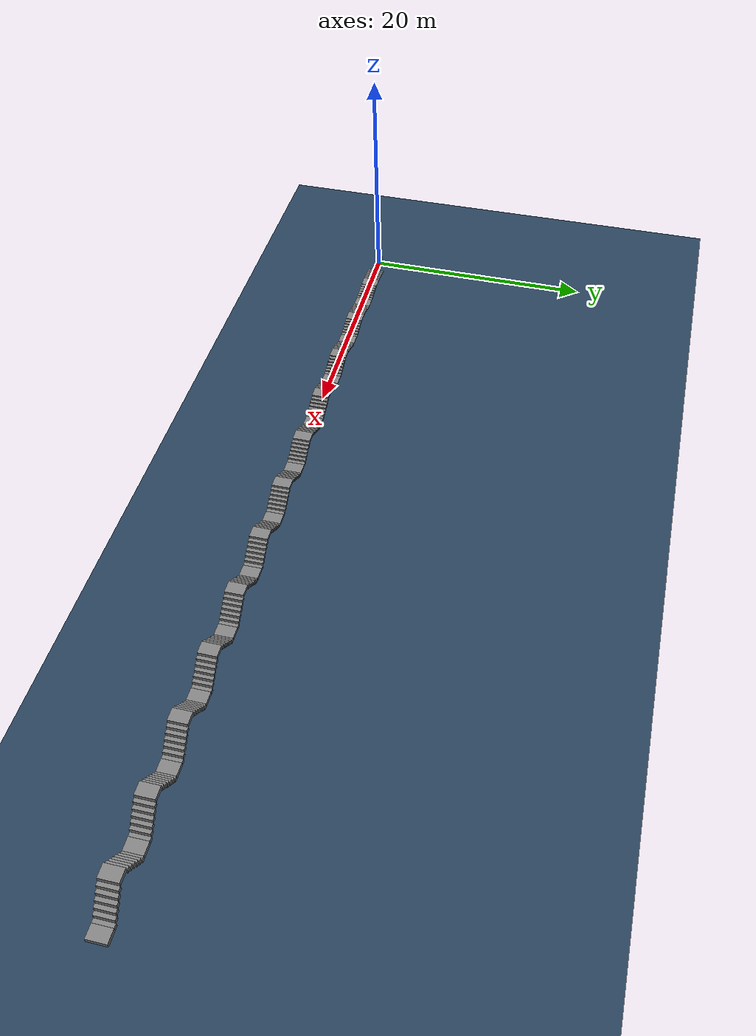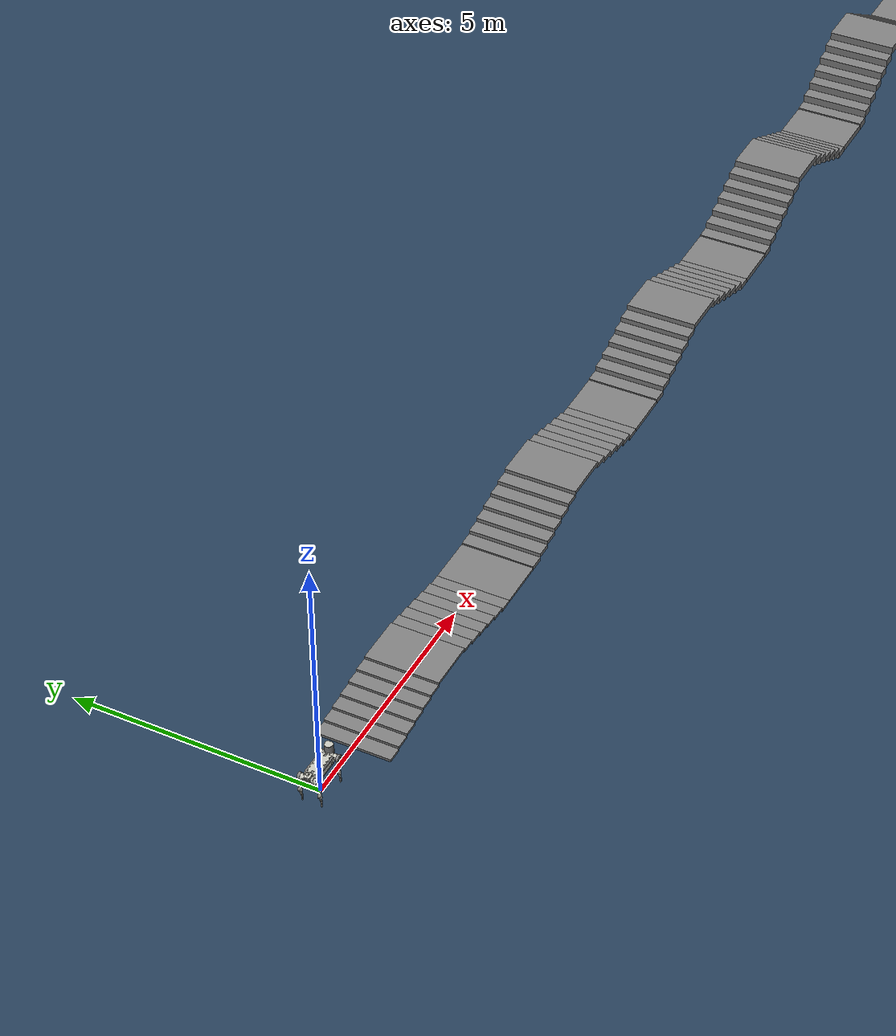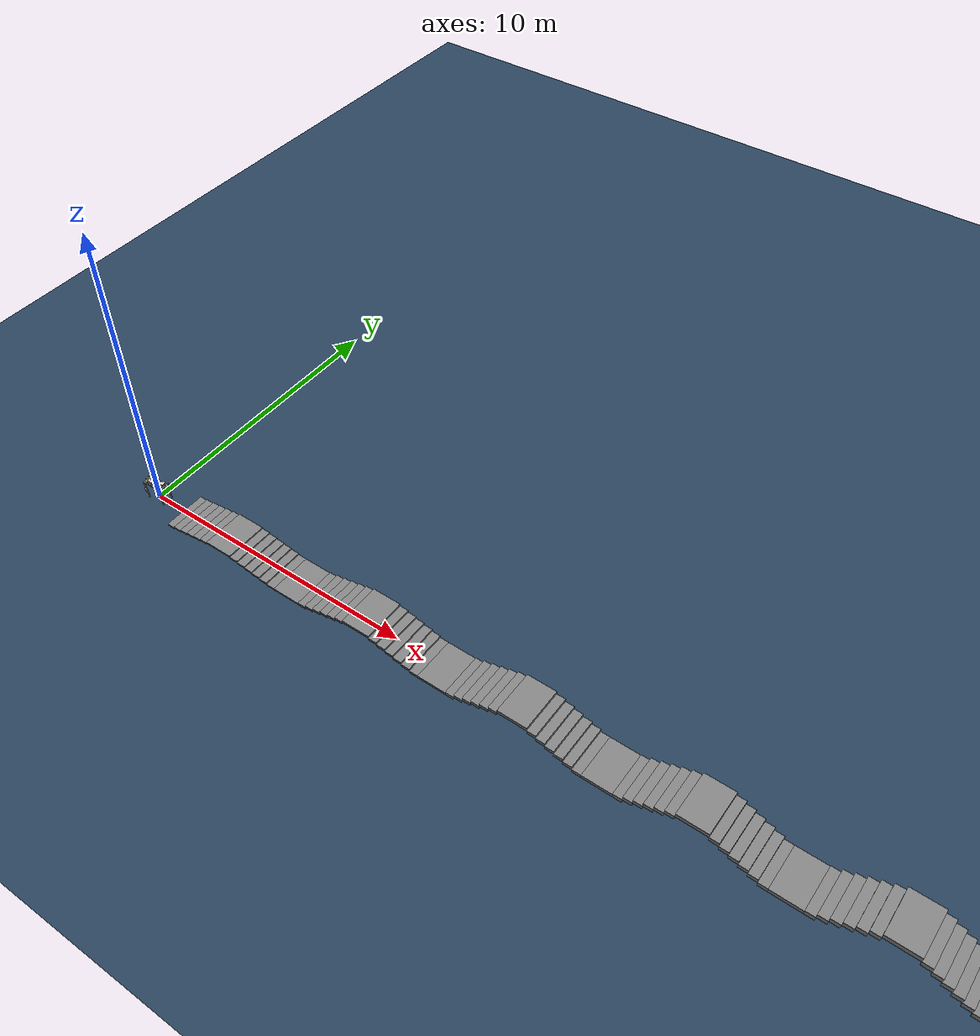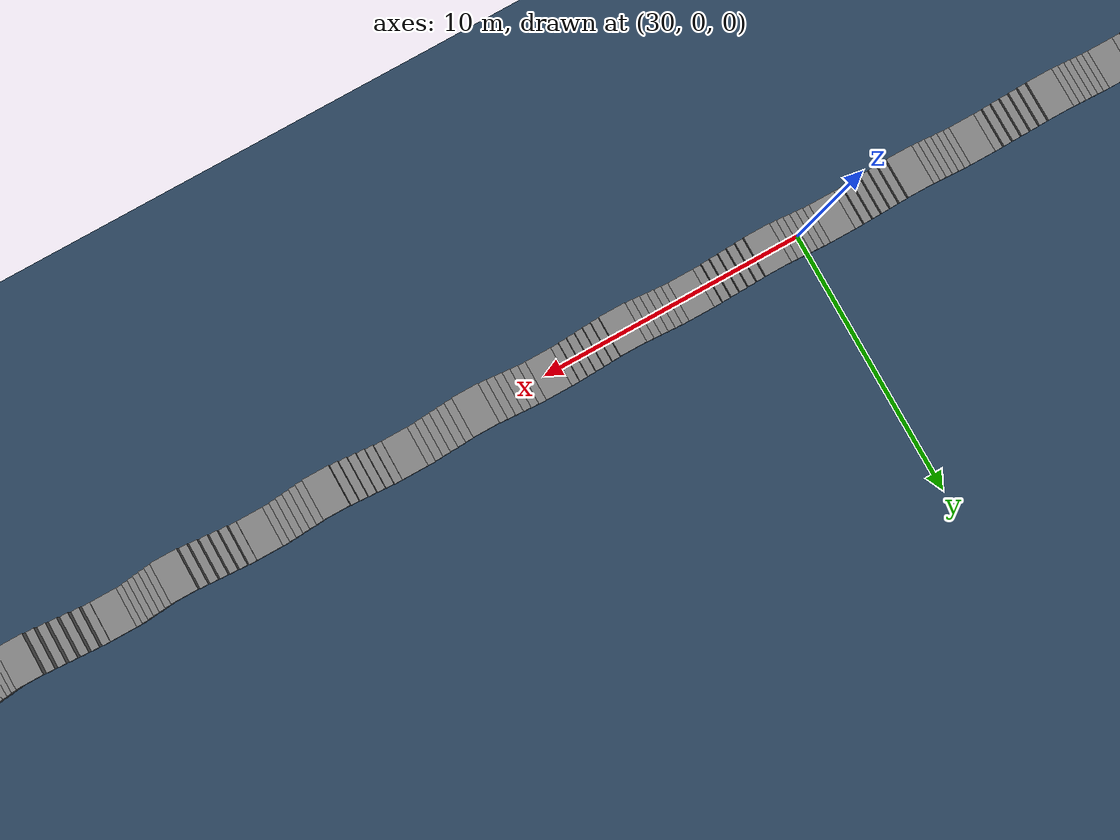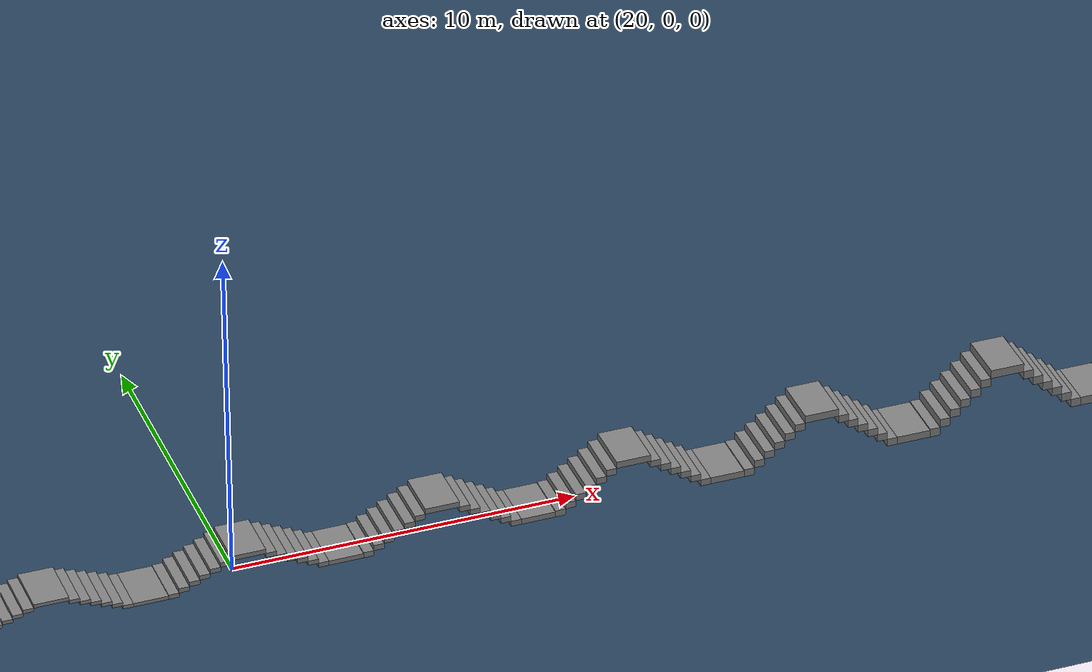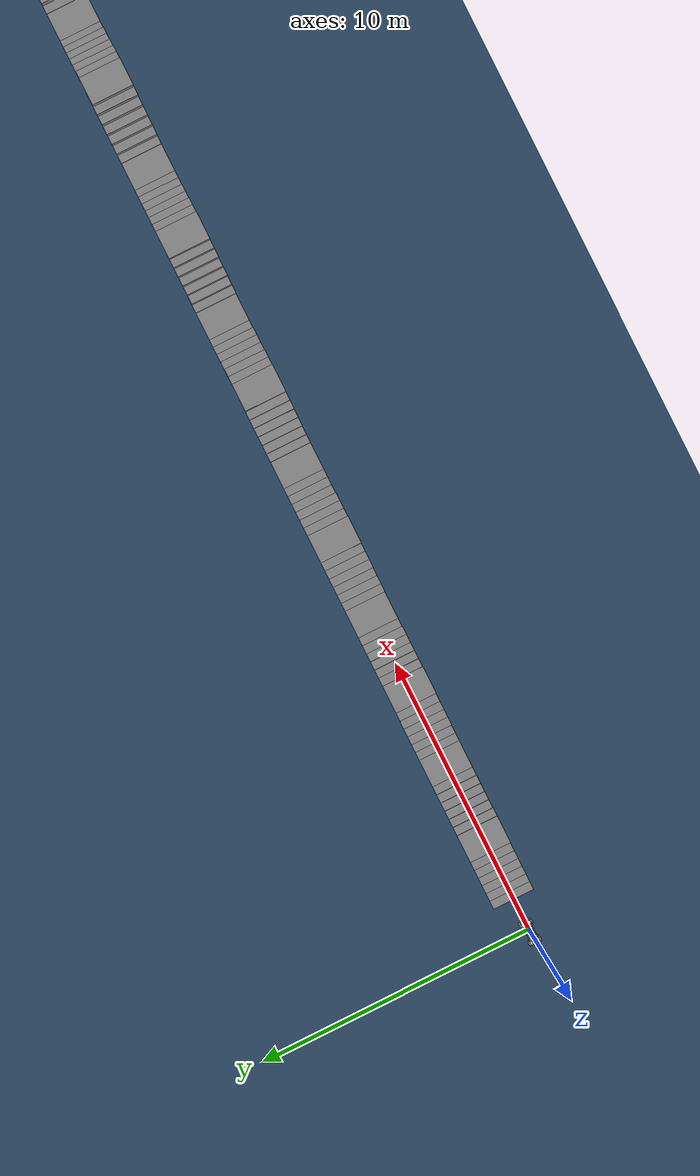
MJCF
<mujoco model="b2 scene">
  <include file="b2.xml" />
  <!--Stairs series: Up 6, Down 6, Start height 0.050, Step inc 0.030, Max height 0.400. -->
  <statistic center="0 0 0.1" extent="0.8" />
  <visual>
    <headlight diffuse="0.6 0.6 0.6" ambient="0.3 0.3 0.3" specular="0 0 0" />
    <rgba haze="0.15 0.25 0.35 1" />
    <global azimuth="-130" elevation="-20" />
  </visual>
  <asset>
    <texture type="skybox" builtin="gradient" rgb1="0.3 0.5 0.7" rgb2="0 0 0" width="512" height="3072" />
    <texture type="2d" name="groundplane" builtin="checker" mark="edge" rgb1="0.2 0.3 0.4" rgb2="0.1 0.2 0.3" markrgb="0.8 0.8 0.8" width="300" height="300" />
    <material name="groundplane" texture="groundplane" texuniform="true" texrepeat="5 5" reflectance="0.0" />
  </asset>
  <worldbody>
    <light pos="0 0 1.5" dir="0 0 -1" directional="true" />
    <geom name="floor" size="0 0 0.05" type="plane" material="groundplane" />
    <geom pos="1.3 0.0 0.025" type="box" size="0.15 0.75 0.025" quat="1.0 0.0 0.0 0.0" />
    <geom pos="1.6 0.0 0.07500000000000001" type="box" size="0.15 0.75 0.025" quat="1.0 0.0 0.0 0.0" />
    <geom pos="1.9 0.0 0.125" type="box" size="0.15 0.75 0.025" quat="1.0 0.0 0.0 0.0" />
    <geom pos="2.2 0.0 0.17500000000000002" type="box" size="0.15 0.75 0.025" quat="1.0 0.0 0.0 0.0" />
    <geom pos="2.5 0.0 0.225" type="box" size="0.15 0.75 0.025" quat="1.0 0.0 0.0 0.0" />
    <geom pos="2.8 0.0 0.275" type="box" size="0.15 0.75 0.025" quat="1.0 0.0 0.0 0.0" />
    <geom pos="3.4499999999999997 0.0 0.32500000000000007" type="box" size="0.5 0.75 0.025" quat="1.0 0.0 0.0 0.0" />
    <geom pos="4.1 0.0 0.275" type="box" size="0.15 0.75 0.025" quat="1.0 0.0 0.0 0.0" />
    <geom pos="4.3999999999999995 0.0 0.22500000000000003" type="box" size="0.15 0.75 0.025" quat="1.0 0.0 0.0 0.0" />
    <geom pos="4.699999999999999 0.0 0.17500000000000002" type="box" size="0.15 0.75 0.025" quat="1.0 0.0 0.0 0.0" />
    <geom pos="5.0 0.0 0.125" type="box" size="0.15 0.75 0.025" quat="1.0 0.0 0.0 0.0" />
    <geom pos="5.3 0.0 0.07500000000000001" type="box" size="0.15 0.75 0.025" quat="1.0 0.0 0.0 0.0" />
    <geom pos="5.6 0.0 0.025000000000000022" type="box" size="0.15 0.75 0.025" quat="1.0 0.0 0.0 0.0" />
    <geom pos="6.25 0.0 0.025" type="box" size="0.5 0.75 0.025" quat="1.0 0.0 0.0 0.0" />
    <geom pos="6.898999999999999 0.0 0.04" type="box" size="0.15 0.75 0.04" quat="1.0 0.0 0.0 0.0" />
    <geom pos="7.198999999999999 0.0 0.12" type="box" size="0.15 0.75 0.04" quat="1.0 0.0 0.0 0.0" />
    <geom pos="7.498999999999999 0.0 0.2" type="box" size="0.15 0.75 0.04" quat="1.0 0.0 0.0 0.0" />
    <geom pos="7.7989999999999995 0.0 0.28" type="box" size="0.15 0.75 0.04" quat="1.0 0.0 0.0 0.0" />
    <geom pos="8.099 0.0 0.36" type="box" size="0.15 0.75 0.04" quat="1.0 0.0 0.0 0.0" />
    <geom pos="8.399 0.0 0.44" type="box" size="0.15 0.75 0.04" quat="1.0 0.0 0.0 0.0" />
    <geom pos="9.049 0.0 0.52" type="box" size="0.5 0.75 0.04" quat="1.0 0.0 0.0 0.0" />
    <geom pos="9.698999999999998 0.0 0.44" type="box" size="0.15 0.75 0.04" quat="1.0 0.0 0.0 0.0" />
    <geom pos="9.998999999999999 0.0 0.36" type="box" size="0.15 0.75 0.04" quat="1.0 0.0 0.0 0.0" />
    <geom pos="10.299 0.0 0.28" type="box" size="0.15 0.75 0.04" quat="1.0 0.0 0.0 0.0" />
    <geom pos="10.598999999999998 0.0 0.2" type="box" size="0.15 0.75 0.04" quat="1.0 0.0 0.0 0.0" />
    <geom pos="10.899 0.0 0.12" type="box" size="0.15 0.75 0.04" quat="1.0 0.0 0.0 0.0" />
    <geom pos="11.198999999999998 0.0 0.03999999999999998" type="box" size="0.15 0.75 0.04" quat="1.0 0.0 0.0 0.0" />
    <geom pos="11.849 0.0 0.04" type="box" size="0.5 0.75 0.04" quat="1.0 0.0 0.0 0.0" />
    <geom pos="12.498 0.0 0.055" type="box" size="0.15 0.75 0.055" quat="1.0 0.0 0.0 0.0" />
    <geom pos="12.797999999999998 0.0 0.165" type="box" size="0.15 0.75 0.055" quat="1.0 0.0 0.0 0.0" />
    <geom pos="13.097999999999999 0.0 0.275" type="box" size="0.15 0.75 0.055" quat="1.0 0.0 0.0 0.0" />
    <geom pos="13.397999999999998 0.0 0.385" type="box" size="0.15 0.75 0.055" quat="1.0 0.0 0.0 0.0" />
    <geom pos="13.697999999999999 0.0 0.495" type="box" size="0.15 0.75 0.055" quat="1.0 0.0 0.0 0.0" />
    <geom pos="13.997999999999998 0.0 0.605" type="box" size="0.15 0.75 0.055" quat="1.0 0.0 0.0 0.0" />
    <geom pos="14.647999999999998 0.0 0.7150000000000001" type="box" size="0.5 0.75 0.055" quat="1.0 0.0 0.0 0.0" />
    <geom pos="15.297999999999998 0.0 0.605" type="box" size="0.15 0.75 0.055" quat="1.0 0.0 0.0 0.0" />
    <geom pos="15.597999999999999 0.0 0.495" type="box" size="0.15 0.75 0.055" quat="1.0 0.0 0.0 0.0" />
    <geom pos="15.897999999999998 0.0 0.385" type="box" size="0.15 0.75 0.055" quat="1.0 0.0 0.0 0.0" />
    <geom pos="16.197999999999997 0.0 0.27499999999999997" type="box" size="0.15 0.75 0.055" quat="1.0 0.0 0.0 0.0" />
    <geom pos="16.497999999999998 0.0 0.16499999999999998" type="box" size="0.15 0.75 0.055" quat="1.0 0.0 0.0 0.0" />
    <geom pos="16.798 0.0 0.05499999999999994" type="box" size="0.15 0.75 0.055" quat="1.0 0.0 0.0 0.0" />
    <geom pos="17.448 0.0 0.055" type="box" size="0.5 0.75 0.055" quat="1.0 0.0 0.0 0.0" />
    <geom pos="18.096999999999998 0.0 0.07" type="box" size="0.15 0.75 0.07" quat="1.0 0.0 0.0 0.0" />
    <geom pos="18.397 0.0 0.21000000000000002" type="box" size="0.15 0.75 0.07" quat="1.0 0.0 0.0 0.0" />
    <geom pos="18.696999999999996 0.0 0.35000000000000003" type="box" size="0.15 0.75 0.07" quat="1.0 0.0 0.0 0.0" />
    <geom pos="18.996999999999996 0.0 0.49000000000000005" type="box" size="0.15 0.75 0.07" quat="1.0 0.0 0.0 0.0" />
    <geom pos="19.296999999999997 0.0 0.6300000000000001" type="box" size="0.15 0.75 0.07" quat="1.0 0.0 0.0 0.0" />
    <geom pos="19.596999999999998 0.0 0.77" type="box" size="0.15 0.75 0.07" quat="1.0 0.0 0.0 0.0" />
    <geom pos="20.246999999999996 0.0 0.9100000000000001" type="box" size="0.5 0.75 0.07" quat="1.0 0.0 0.0 0.0" />
    <geom pos="20.897 0.0 0.77" type="box" size="0.15 0.75 0.07" quat="1.0 0.0 0.0 0.0" />
    <geom pos="21.196999999999996 0.0 0.63" type="box" size="0.15 0.75 0.07" quat="1.0 0.0 0.0 0.0" />
    <geom pos="21.496999999999996 0.0 0.49" type="box" size="0.15 0.75 0.07" quat="1.0 0.0 0.0 0.0" />
    <geom pos="21.796999999999997 0.0 0.35" type="box" size="0.15 0.75 0.07" quat="1.0 0.0 0.0 0.0" />
    <geom pos="22.096999999999998 0.0 0.20999999999999996" type="box" size="0.15 0.75 0.07" quat="1.0 0.0 0.0 0.0" />
    <geom pos="22.397 0.0 0.06999999999999995" type="box" size="0.15 0.75 0.07" quat="1.0 0.0 0.0 0.0" />
    <geom pos="23.046999999999997 0.0 0.07" type="box" size="0.5 0.75 0.07" quat="1.0 0.0 0.0 0.0" />
    <geom pos="23.695999999999998 0.0 0.085" type="box" size="0.15 0.75 0.085" quat="1.0 0.0 0.0 0.0" />
    <geom pos="23.996 0.0 0.255" type="box" size="0.15 0.75 0.085" quat="1.0 0.0 0.0 0.0" />
    <geom pos="24.295999999999996 0.0 0.42500000000000004" type="box" size="0.15 0.75 0.085" quat="1.0 0.0 0.0 0.0" />
    <geom pos="24.595999999999997 0.0 0.5950000000000001" type="box" size="0.15 0.75 0.085" quat="1.0 0.0 0.0 0.0" />
    <geom pos="24.895999999999997 0.0 0.765" type="box" size="0.15 0.75 0.085" quat="1.0 0.0 0.0 0.0" />
    <geom pos="25.195999999999998 0.0 0.935" type="box" size="0.15 0.75 0.085" quat="1.0 0.0 0.0 0.0" />
    <geom pos="25.845999999999997 0.0 1.105" type="box" size="0.5 0.75 0.085" quat="1.0 0.0 0.0 0.0" />
    <geom pos="26.495999999999995 0.0 0.935" type="box" size="0.15 0.75 0.085" quat="1.0 0.0 0.0 0.0" />
    <geom pos="26.795999999999996 0.0 0.765" type="box" size="0.15 0.75 0.085" quat="1.0 0.0 0.0 0.0" />
    <geom pos="27.095999999999997 0.0 0.595" type="box" size="0.15 0.75 0.085" quat="1.0 0.0 0.0 0.0" />
    <geom pos="27.395999999999997 0.0 0.42500000000000004" type="box" size="0.15 0.75 0.085" quat="1.0 0.0 0.0 0.0" />
    <geom pos="27.695999999999998 0.0 0.255" type="box" size="0.15 0.75 0.085" quat="1.0 0.0 0.0 0.0" />
    <geom pos="27.995999999999995 0.0 0.08499999999999996" type="box" size="0.15 0.75 0.085" quat="1.0 0.0 0.0 0.0" />
    <geom pos="28.645999999999997 0.0 0.085" type="box" size="0.5 0.75 0.085" quat="1.0 0.0 0.0 0.0" />
    <geom pos="29.294999999999998 0.0 0.1" type="box" size="0.15 0.75 0.1" quat="1.0 0.0 0.0 0.0" />
    <geom pos="29.595 0.0 0.30000000000000004" type="box" size="0.15 0.75 0.1" quat="1.0 0.0 0.0 0.0" />
    <geom pos="29.894999999999996 0.0 0.5" type="box" size="0.15 0.75 0.1" quat="1.0 0.0 0.0 0.0" />
    <geom pos="30.194999999999997 0.0 0.7000000000000001" type="box" size="0.15 0.75 0.1" quat="1.0 0.0 0.0 0.0" />
    <geom pos="30.494999999999997 0.0 0.9" type="box" size="0.15 0.75 0.1" quat="1.0 0.0 0.0 0.0" />
    <geom pos="30.794999999999998 0.0 1.1" type="box" size="0.15 0.75 0.1" quat="1.0 0.0 0.0 0.0" />
    <geom pos="31.444999999999997 0.0 1.3000000000000003" type="box" size="0.5 0.75 0.1" quat="1.0 0.0 0.0 0.0" />
    <geom pos="32.095 0.0 1.1" type="box" size="0.15 0.75 0.1" quat="1.0 0.0 0.0 0.0" />
    <geom pos="32.394999999999996 0.0 0.9000000000000001" type="box" size="0.15 0.75 0.1" quat="1.0 0.0 0.0 0.0" />
    <geom pos="32.695 0.0 0.7000000000000001" type="box" size="0.15 0.75 0.1" quat="1.0 0.0 0.0 0.0" />
    <geom pos="32.995 0.0 0.5" type="box" size="0.15 0.75 0.1" quat="1.0 0.0 0.0 0.0" />
    <geom pos="33.294999999999995 0.0 0.30000000000000004" type="box" size="0.15 0.75 0.1" quat="1.0 0.0 0.0 0.0" />
    <geom pos="33.595 0.0 0.10000000000000009" type="box" size="0.15 0.75 0.1" quat="1.0 0.0 0.0 0.0" />
    <geom pos="34.245 0.0 0.1" type="box" size="0.5 0.75 0.1" quat="1.0 0.0 0.0 0.0" />
    <geom pos="34.89399999999999 0.0 0.115" type="box" size="0.15 0.75 0.115" quat="1.0 0.0 0.0 0.0" />
    <geom pos="35.193999999999996 0.0 0.34500000000000003" type="box" size="0.15 0.75 0.115" quat="1.0 0.0 0.0 0.0" />
    <geom pos="35.49399999999999 0.0 0.5750000000000001" type="box" size="0.15 0.75 0.115" quat="1.0 0.0 0.0 0.0" />
    <geom pos="35.794 0.0 0.805" type="box" size="0.15 0.75 0.115" quat="1.0 0.0 0.0 0.0" />
    <geom pos="36.093999999999994 0.0 1.0350000000000001" type="box" size="0.15 0.75 0.115" quat="1.0 0.0 0.0 0.0" />
    <geom pos="36.39399999999999 0.0 1.2650000000000001" type="box" size="0.15 0.75 0.115" quat="1.0 0.0 0.0 0.0" />
    <geom pos="37.044 0.0 1.495" type="box" size="0.5 0.75 0.115" quat="1.0 0.0 0.0 0.0" />
    <geom pos="37.693999999999996 0.0 1.2650000000000001" type="box" size="0.15 0.75 0.115" quat="1.0 0.0 0.0 0.0" />
    <geom pos="37.99399999999999 0.0 1.0350000000000001" type="box" size="0.15 0.75 0.115" quat="1.0 0.0 0.0 0.0" />
    <geom pos="38.294 0.0 0.8050000000000002" type="box" size="0.15 0.75 0.115" quat="1.0 0.0 0.0 0.0" />
    <geom pos="38.593999999999994 0.0 0.5750000000000001" type="box" size="0.15 0.75 0.115" quat="1.0 0.0 0.0 0.0" />
    <geom pos="38.89399999999999 0.0 0.3450000000000001" type="box" size="0.15 0.75 0.115" quat="1.0 0.0 0.0 0.0" />
    <geom pos="39.193999999999996 0.0 0.11499999999999999" type="box" size="0.15 0.75 0.115" quat="1.0 0.0 0.0 0.0" />
    <geom pos="39.843999999999994 0.0 0.115" type="box" size="0.5 0.75 0.115" quat="1.0 0.0 0.0 0.0" />
    <geom pos="40.49299999999999 0.0 0.13" type="box" size="0.15 0.75 0.13" quat="1.0 0.0 0.0 0.0" />
    <geom pos="40.79299999999999 0.0 0.39" type="box" size="0.15 0.75 0.13" quat="1.0 0.0 0.0 0.0" />
    <geom pos="41.09299999999999 0.0 0.65" type="box" size="0.15 0.75 0.13" quat="1.0 0.0 0.0 0.0" />
    <geom pos="41.392999999999994 0.0 0.91" type="box" size="0.15 0.75 0.13" quat="1.0 0.0 0.0 0.0" />
    <geom pos="41.69299999999999 0.0 1.17" type="box" size="0.15 0.75 0.13" quat="1.0 0.0 0.0 0.0" />
    <geom pos="41.99299999999999 0.0 1.4300000000000002" type="box" size="0.15 0.75 0.13" quat="1.0 0.0 0.0 0.0" />
    <geom pos="42.642999999999994 0.0 1.69" type="box" size="0.5 0.75 0.13" quat="1.0 0.0 0.0 0.0" />
    <geom pos="43.29299999999999 0.0 1.4300000000000002" type="box" size="0.15 0.75 0.13" quat="1.0 0.0 0.0 0.0" />
    <geom pos="43.59299999999999 0.0 1.1700000000000002" type="box" size="0.15 0.75 0.13" quat="1.0 0.0 0.0 0.0" />
    <geom pos="43.892999999999994 0.0 0.9100000000000001" type="box" size="0.15 0.75 0.13" quat="1.0 0.0 0.0 0.0" />
    <geom pos="44.19299999999999 0.0 0.6500000000000001" type="box" size="0.15 0.75 0.13" quat="1.0 0.0 0.0 0.0" />
    <geom pos="44.49299999999999 0.0 0.3900000000000001" type="box" size="0.15 0.75 0.13" quat="1.0 0.0 0.0 0.0" />
    <geom pos="44.79299999999999 0.0 0.13000000000000012" type="box" size="0.15 0.75 0.13" quat="1.0 0.0 0.0 0.0" />
    <geom pos="45.44299999999999 0.0 0.13" type="box" size="0.5 0.75 0.13" quat="1.0 0.0 0.0 0.0" />
    <geom pos="46.091999999999985 0.0 0.145" type="box" size="0.15 0.75 0.145" quat="1.0 0.0 0.0 0.0" />
    <geom pos="46.39199999999999 0.0 0.43499999999999994" type="box" size="0.15 0.75 0.145" quat="1.0 0.0 0.0 0.0" />
    <geom pos="46.691999999999986 0.0 0.725" type="box" size="0.15 0.75 0.145" quat="1.0 0.0 0.0 0.0" />
    <geom pos="46.99199999999999 0.0 1.015" type="box" size="0.15 0.75 0.145" quat="1.0 0.0 0.0 0.0" />
    <geom pos="47.29199999999999 0.0 1.305" type="box" size="0.15 0.75 0.145" quat="1.0 0.0 0.0 0.0" />
    <geom pos="47.591999999999985 0.0 1.595" type="box" size="0.15 0.75 0.145" quat="1.0 0.0 0.0 0.0" />
    <geom pos="48.24199999999999 0.0 1.8849999999999998" type="box" size="0.5 0.75 0.145" quat="1.0 0.0 0.0 0.0" />
    <geom pos="48.89199999999999 0.0 1.5949999999999998" type="box" size="0.15 0.75 0.145" quat="1.0 0.0 0.0 0.0" />
    <geom pos="49.191999999999986 0.0 1.3049999999999997" type="box" size="0.15 0.75 0.145" quat="1.0 0.0 0.0 0.0" />
    <geom pos="49.49199999999999 0.0 1.0149999999999997" type="box" size="0.15 0.75 0.145" quat="1.0 0.0 0.0 0.0" />
    <geom pos="49.79199999999999 0.0 0.7249999999999999" type="box" size="0.15 0.75 0.145" quat="1.0 0.0 0.0 0.0" />
    <geom pos="50.091999999999985 0.0 0.43499999999999983" type="box" size="0.15 0.75 0.145" quat="1.0 0.0 0.0 0.0" />
    <geom pos="50.39199999999999 0.0 0.1449999999999998" type="box" size="0.15 0.75 0.145" quat="1.0 0.0 0.0 0.0" />
    <geom pos="51.04199999999999 0.0 0.145" type="box" size="0.5 0.75 0.145" quat="1.0 0.0 0.0 0.0" />
    <geom pos="51.69099999999998 0.0 0.16" type="box" size="0.15 0.75 0.16" quat="1.0 0.0 0.0 0.0" />
    <geom pos="51.990999999999985 0.0 0.48" type="box" size="0.15 0.75 0.16" quat="1.0 0.0 0.0 0.0" />
    <geom pos="52.29099999999998 0.0 0.8" type="box" size="0.15 0.75 0.16" quat="1.0 0.0 0.0 0.0" />
    <geom pos="52.59099999999999 0.0 1.12" type="box" size="0.15 0.75 0.16" quat="1.0 0.0 0.0 0.0" />
    <geom pos="52.890999999999984 0.0 1.44" type="box" size="0.15 0.75 0.16" quat="1.0 0.0 0.0 0.0" />
    <geom pos="53.19099999999998 0.0 1.76" type="box" size="0.15 0.75 0.16" quat="1.0 0.0 0.0 0.0" />
    <geom pos="53.84099999999999 0.0 2.08" type="box" size="0.5 0.75 0.16" quat="1.0 0.0 0.0 0.0" />
    <geom pos="54.490999999999985 0.0 1.76" type="box" size="0.15 0.75 0.16" quat="1.0 0.0 0.0 0.0" />
    <geom pos="54.79099999999998 0.0 1.44" type="box" size="0.15 0.75 0.16" quat="1.0 0.0 0.0 0.0" />
    <geom pos="55.09099999999999 0.0 1.12" type="box" size="0.15 0.75 0.16" quat="1.0 0.0 0.0 0.0" />
    <geom pos="55.390999999999984 0.0 0.8" type="box" size="0.15 0.75 0.16" quat="1.0 0.0 0.0 0.0" />
    <geom pos="55.69099999999998 0.0 0.48" type="box" size="0.15 0.75 0.16" quat="1.0 0.0 0.0 0.0" />
    <geom pos="55.990999999999985 0.0 0.15999999999999992" type="box" size="0.15 0.75 0.16" quat="1.0 0.0 0.0 0.0" />
    <geom pos="56.640999999999984 0.0 0.16" type="box" size="0.5 0.75 0.16" quat="1.0 0.0 0.0 0.0" />
    <geom pos="57.28999999999998 0.0 0.175" type="box" size="0.15 0.75 0.175" quat="1.0 0.0 0.0 0.0" />
    <geom pos="57.58999999999998 0.0 0.5249999999999999" type="box" size="0.15 0.75 0.175" quat="1.0 0.0 0.0 0.0" />
    <geom pos="57.88999999999998 0.0 0.875" type="box" size="0.15 0.75 0.175" quat="1.0 0.0 0.0 0.0" />
    <geom pos="58.18999999999998 0.0 1.2249999999999999" type="box" size="0.15 0.75 0.175" quat="1.0 0.0 0.0 0.0" />
    <geom pos="58.48999999999998 0.0 1.575" type="box" size="0.15 0.75 0.175" quat="1.0 0.0 0.0 0.0" />
    <geom pos="58.78999999999998 0.0 1.9249999999999998" type="box" size="0.15 0.75 0.175" quat="1.0 0.0 0.0 0.0" />
    <geom pos="59.43999999999998 0.0 2.2749999999999995" type="box" size="0.5 0.75 0.175" quat="1.0 0.0 0.0 0.0" />
    <geom pos="60.08999999999998 0.0 1.9249999999999996" type="box" size="0.15 0.75 0.175" quat="1.0 0.0 0.0 0.0" />
    <geom pos="60.38999999999998 0.0 1.5749999999999997" type="box" size="0.15 0.75 0.175" quat="1.0 0.0 0.0 0.0" />
    <geom pos="60.68999999999998 0.0 1.2249999999999996" type="box" size="0.15 0.75 0.175" quat="1.0 0.0 0.0 0.0" />
    <geom pos="60.98999999999998 0.0 0.8749999999999998" type="box" size="0.15 0.75 0.175" quat="1.0 0.0 0.0 0.0" />
    <geom pos="61.28999999999998 0.0 0.5249999999999997" type="box" size="0.15 0.75 0.175" quat="1.0 0.0 0.0 0.0" />
    <geom pos="61.58999999999998 0.0 0.1749999999999996" type="box" size="0.15 0.75 0.175" quat="1.0 0.0 0.0 0.0" />
    <geom pos="62.23999999999998 0.0 0.175" type="box" size="0.5 0.75 0.175" quat="1.0 0.0 0.0 0.0" />
    <geom pos="62.888999999999974 0.0 0.19" type="box" size="0.15 0.75 0.19" quat="1.0 0.0 0.0 0.0" />
    <geom pos="63.18899999999998 0.0 0.5700000000000001" type="box" size="0.15 0.75 0.19" quat="1.0 0.0 0.0 0.0" />
    <geom pos="63.488999999999976 0.0 0.95" type="box" size="0.15 0.75 0.19" quat="1.0 0.0 0.0 0.0" />
    <geom pos="63.78899999999998 0.0 1.33" type="box" size="0.15 0.75 0.19" quat="1.0 0.0 0.0 0.0" />
    <geom pos="64.08899999999997 0.0 1.71" type="box" size="0.15 0.75 0.19" quat="1.0 0.0 0.0 0.0" />
    <geom pos="64.38899999999998 0.0 2.09" type="box" size="0.15 0.75 0.19" quat="1.0 0.0 0.0 0.0" />
    <geom pos="65.03899999999997 0.0 2.47" type="box" size="0.5 0.75 0.19" quat="1.0 0.0 0.0 0.0" />
    <geom pos="65.68899999999998 0.0 2.0900000000000003" type="box" size="0.15 0.75 0.19" quat="1.0 0.0 0.0 0.0" />
    <geom pos="65.98899999999998 0.0 1.7100000000000004" type="box" size="0.15 0.75 0.19" quat="1.0 0.0 0.0 0.0" />
    <geom pos="66.28899999999997 0.0 1.3300000000000003" type="box" size="0.15 0.75 0.19" quat="1.0 0.0 0.0 0.0" />
    <geom pos="66.58899999999997 0.0 0.9500000000000002" type="box" size="0.15 0.75 0.19" quat="1.0 0.0 0.0 0.0" />
    <geom pos="66.88899999999998 0.0 0.5700000000000003" type="box" size="0.15 0.75 0.19" quat="1.0 0.0 0.0 0.0" />
    <geom pos="67.18899999999998 0.0 0.1900000000000004" type="box" size="0.15 0.75 0.19" quat="1.0 0.0 0.0 0.0" />
    <geom pos="67.83899999999997 0.0 0.19" type="box" size="0.5 0.75 0.19" quat="1.0 0.0 0.0 0.0" />
  </worldbody>
  <keyframe>
    <key name="b2_start" qpos="0 0 0.64 1 0 0 0 0.1 0.8 -1.5 -0.1 0.8 -1.5 0.1 1.0 -1.5 -0.1 1.0 -1.5"/>
  </keyframe>
</mujoco>

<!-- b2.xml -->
<mujoco model="b2_description">
  <compiler angle="radian" meshdir="assets" />
  <statistic meansize="0.25" extent="2.0" center="0 0 -0.35" />
  <default>
    <joint damping="0.02" armature="0.02" frictionloss="0.05" />
    <geom condim="3" friction="0.9 0.02 0.01" />
    <default class="visual">
      <geom type="mesh" contype="0" conaffinity="0" group="2" />
    </default>
  </default>
  <asset>
    <material name="b2_body" rgba="0.78 0.78 0.74 1" />
    <material name="black" rgba="0.06 0.06 0.06 1" />
    <mesh name="FL_calf_mesh" file="FL_calf.obj" />
    <mesh name="FL_hip_mesh" file="FL_hip.obj" />
    <mesh name="FL_thigh_mesh" file="FL_thigh.obj" />
    <mesh name="FR_calf_mesh" file="FR_calf.obj" />
    <mesh name="FR_hip_mesh" file="FR_hip.obj" />
    <mesh name="FR_thigh_mesh" file="FR_thigh.obj" />
    <mesh name="RL_calf_mesh" file="RL_calf.obj" />
    <mesh name="RL_hip_mesh" file="RL_hip.obj" />
    <mesh name="RL_thigh_mesh" file="RL_thigh.obj" />
    <mesh name="RR_calf_mesh" file="RR_calf.obj" />
    <mesh name="RR_hip_mesh" file="RR_hip.obj" />
    <mesh name="RR_thigh_mesh" file="RR_thigh.obj" />
    <mesh name="base_link_mesh" file="base_link.obj" />
  </asset>
  <worldbody>
    <body name="base" pos="0 0 0.58">
      <inertial pos="0.000458 0.005261 0.000665" mass="35.86" fullinertia="0.27466 1.0618 1.1825 -0.000622 0.00315 -0.00139" />
      <freejoint name="root" />
      <geom name="base_visual_0" mesh="base_link_mesh" material="b2_body" class="visual" />
      <geom name="base_collision_0" type="box" size="0.25 0.14 0.075" />
      <body pos="0.34218 0 0.17851" name="lidar_link">
        <geom pos="0 0 -0.02" name="lidar_link_collision_0" type="cylinder" size="0.076 0.08" />
      </body>
      <body pos="0.41251 0.024997 0.04765" quat="0.27059575 -0.65328103 0.65328343 -0.27059675" name="f_dc_link" />
      <body pos="-0.4081 -0.025 0.024861" quat="0.27075907 -0.65321336 -0.65321576 0.27076006" name="r_dc_link" />
      <body pos="0 -0.02341 0.04927" name="imu_link" />
      <body name="head_Link">
        <inertial pos="0.33989 -0.000168 0.12029" mass="3.6885" fullinertia="0.026455 0.029221 0.010918 3.15e-05 0.00166 -3.27e-05" />
        <geom pos="0.41 0 0.005" name="head_Link_collision_0" type="box" size="0.02 0.06 0.07" />
      </body>
      <body name="tail_link">
        <inertial pos="-0.37448 0.000488 0.006495" mass="0.795" fullinertia="0.0028118 0.0047506 0.0029154 1.95e-05 -7.87e-06 -1.57e-05" />
        <geom pos="-0.405 0 0.005" name="tail_link_collision_0" type="box" size="0.0125 0.06 0.07" />
      </body>
      <body pos="0.3285 0.072 0" name="FL_hip">
        <inertial pos="-0.003841 -0.009068 0" mass="2.673" fullinertia="0.0033188 0.0048743 0.0037087 7.16e-05 -3.77e-07 4e-09" />
        <joint name="FL_hip_joint" axis="1 0 0" range="-0.87 0.87" actuatorfrcrange="-200 200" />
        <geom name="FL_hip_visual_0" mesh="FL_hip_mesh" material="b2_body" class="visual" />
        <geom pos="0 0.12 0" quat="0.70710678 0.70710678 0 0" name="FL_hip_collision_0" type="cylinder" size="0.07 0.025" />
        <body pos="0 0.11973 0" name="FL_thigh">
          <inertial pos="-0.006279 -0.032049 -0.057835" mass="4.536" fullinertia="0.062299 0.061399 0.0081997 0.00087781 -0.0036475 0.0083537" />
          <joint name="FL_thigh_joint" axis="0 1 0" range="-0.94 4.69" actuatorfrcrange="-200 200" />
          <geom name="FL_thigh_visual_0" mesh="FL_thigh_mesh" material="b2_body" class="visual" />
          <geom pos="-0.025 0 -0.16" quat="0.70738827 0 0.70682518 0" name="FL_thigh_collision_0" type="box" size="0.16 0.02225 0.027" />
          <body pos="0 -8.6984e-05 -0.35" name="FL_calf">
            <inertial pos="0.012422 0 -0.12499" mass="0.404" fullinertia="0.01143 0.011534 0.000331 0 0.000643 0" />
            <joint name="FL_calf_joint" axis="0 1 0" range="-2.82 -0.43" actuatorfrcrange="-320 320" />
            <geom name="FL_calf_visual_0" mesh="FL_calf_mesh" material="b2_body" class="visual" />
            <geom pos="-0.002 0 -0.03" quat="0.82533561 0 0.56464247 0" name="FL_calf_collision_0" type="box" size="0.05 0.01225 0.009" />
            <geom pos="0.022 0 -0.1" quat="0.78070695 0 0.62489732 0" name="FL_calf_collision_1" type="box" size="0.05 0.01225 0.009" />
            <geom pos="0.036 0 -0.225" quat="0.72138236 0 0.692537 0" name="FL_calf_collision_2" type="box" size="0.075 0.01225 0.0075" />
            <geom pos="0.023 0 -0.31" quat="0.54030231 0 0.84147098 0" name="FL_calf_collision_3" type="box" size="0.025 0.014 0.0175" />
            <body pos="0 0 -0.35" name="FL_foot">
              <inertial pos="-0.006511 0 -0.010144" mass="0.126" fullinertia="3.8e-05 4.1e-05 4.2e-05 0 1.1e-05 0" />
              <geom quat="0.70738827 0.70682518 0 0" name="FL_foot_collision_0" type="sphere" size="0.032" />
            </body>
          </body>
          <body pos="0 -0.05788 0" name="FL_calf_rotor">
            <inertial pos="0 0 0" mass="0.2734" fullinertia="0.000144463 0.000144463 0.000263053 0 0 0" />
            <geom quat="0.70710678 0.70710678 0 0" name="FL_calf_rotor_collision_0" type="cylinder" size="0.05 0.01" />
          </body>
        </body>
        <body pos="0 -0.00798 0" name="FL_thigh_rotor">
          <inertial pos="0 0 0" mass="0.2734" fullinertia="0.000144463 0.000144463 0.000263053 0 0 0" />
          <geom quat="0.70710678 0.70710678 0 0" name="FL_thigh_rotor_collision_0" type="cylinder" size="0.05 0.01" />
        </body>
      </body>
      <body pos="0.20205 0.072 0" name="FL_hip_rotor">
        <inertial pos="0 0 0" mass="0.2734" fullinertia="0.000144463 0.000144463 0.000263053 0 0 0" />
        <geom quat="0.70710678 0 0.70710678 0" name="FL_hip_rotor_collision_0" type="cylinder" size="0.05 0.01" />
      </body>
      <body pos="0.3285 -0.072 0" name="FR_hip">
        <inertial pos="-0.009305 0.010228 0.000264" mass="2.673" fullinertia="0.0026431 0.0046728 0.0034208 -0.00019234 -6.76e-06 7.16e-06" />
        <joint name="FR_hip_joint" axis="1 0 0" range="-0.87 0.87" actuatorfrcrange="-200 200" />
        <geom name="FR_hip_visual_0" mesh="FR_hip_mesh" material="b2_body" class="visual" />
        <geom pos="0 -0.12 0" quat="0.70710678 0.70710678 0 0" name="FR_hip_collision_0" type="cylinder" size="0.07 0.025" />
        <body pos="0 -0.11973 0" name="FR_thigh">
          <inertial pos="-0.006279 0.032049 -0.057835" mass="4.536" fullinertia="0.06229908 0.06139927 0.008199745 -0.000877808 -0.003647464 -0.008353671" />
          <joint name="FR_thigh_joint" axis="0 1 0" range="-0.94 4.69" actuatorfrcrange="-200 200" />
          <geom name="FR_thigh_visual_0" mesh="FR_thigh_mesh" material="b2_body" class="visual" />
          <geom pos="-0.03 0 -0.2" quat="0.70738827 0 0.70682518 0" name="FR_thigh_collision_0" type="box" size="0.125 0.014 0.02" />
          <body pos="0 8.6986e-05 -0.35" name="FR_calf">
            <inertial pos="0.012422 0 -0.12499" mass="0.404" fullinertia="0.01143 0.011534 0.000331 0 0.000643 0" />
            <joint name="FR_calf_joint" axis="0 1 0" range="-2.82 -0.43" actuatorfrcrange="-320 320" />
            <geom name="FR_calf_visual_0" mesh="FR_calf_mesh" material="b2_body" class="visual" />
            <geom pos="-0.002 0 -0.03" quat="0.82533561 0 0.56464247 0" name="FR_calf_collision_0" type="box" size="0.05 0.01225 0.009" />
            <geom pos="0.022 0 -0.1" quat="0.78070695 0 0.62489732 0" name="FR_calf_collision_1" type="box" size="0.05 0.01225 0.009" />
            <geom pos="0.036 0 -0.225" quat="0.72138236 0 0.692537 0" name="FR_calf_collision_2" type="box" size="0.075 0.01225 0.0075" />
            <geom pos="0.023 0 -0.31" quat="0.54030231 0 0.84147098 0" name="FR_calf_collision_3" type="box" size="0.025 0.014 0.0175" />
            <body pos="0 0 -0.35" name="FR_foot">
              <inertial pos="-0.006511 0 -0.010144" mass="0.126" fullinertia="3.8e-05 4.1e-05 4.2e-05 0 1.1e-05 0" />
              <geom quat="0.70738827 0.70682518 0 0" name="FR_foot_collision_0" type="sphere" size="0.032" />
            </body>
          </body>
          <body pos="0 0.05788 0" name="FR_calf_rotor">
            <inertial pos="0 0 0" mass="0.2734" fullinertia="0.000144463 0.000144463 0.000263053 0 0 0" />
            <geom quat="0.70710678 0.70710678 0 0" name="FR_calf_rotor_collision_0" type="cylinder" size="0.05 0.01" />
          </body>
        </body>
        <body pos="0 0.00798 0" name="FR_thigh_rotor">
          <inertial pos="0 0 0" mass="0.2734" fullinertia="0.000144463 0.000144463 0.000263053 0 0 0" />
          <geom quat="0.70710678 0.70710678 0 0" name="FR_thigh_rotor_collision_0" type="cylinder" size="0.05 0.01" />
        </body>
      </body>
      <body pos="0.20205 -0.072 0" name="FR_hip_rotor">
        <inertial pos="0 0 0" mass="0.2734" fullinertia="0.000144463 0.000144463 0.000263053 0 0 0" />
        <geom quat="0.70710678 0 0.70710678 0" name="FR_hip_rotor_collision_0" type="cylinder" size="0.05 0.01" />
      </body>
      <body pos="-0.3285 0.072 0" name="RL_hip">
        <inertial pos="0.009305 -0.010228 0.000264" mass="2.673" fullinertia="0.0026431 0.0046728 0.0034208 -0.00019234 6.76e-06 -7.16e-06" />
        <joint name="RL_hip_joint" axis="1 0 0" range="-0.87 0.87" actuatorfrcrange="-200 200" />
        <geom name="RL_hip_visual_0" mesh="RL_hip_mesh" material="b2_body" class="visual" />
        <geom pos="0 0.12 0" quat="0.70710678 0.70710678 0 0" name="RL_hip_collision_0" type="cylinder" size="0.07 0.025" />
        <body pos="0 0.11973 0" name="RL_thigh">
          <inertial pos="-0.006279 -0.032049 -0.057835" mass="4.536" fullinertia="0.06229908 0.06139927 0.008199745 0.000877808 -0.003647464 0.008353671" />
          <joint name="RL_thigh_joint" axis="0 1 0" range="-0.94 4.69" actuatorfrcrange="-200 200" />
          <geom name="RL_thigh_visual_0" mesh="RL_thigh_mesh" material="b2_body" class="visual" />
          <geom pos="-0.03 0 -0.2" quat="0.70738827 0 0.70682518 0" name="RL_thigh_collision_0" type="box" size="0.125 0.014 0.02" />
          <body pos="0 -8.6984e-05 -0.35" name="RL_calf">
            <inertial pos="0.012422 0 -0.12499" mass="0.404" fullinertia="0.01143 0.011534 0.000331 0 0.000643 0" />
            <joint name="RL_calf_joint" axis="0 1 0" range="-2.82 -0.43" actuatorfrcrange="-320 320" />
            <geom name="RL_calf_visual_0" mesh="RL_calf_mesh" material="b2_body" class="visual" />
            <geom pos="-0.002 0 -0.03" quat="0.82533561 0 0.56464247 0" name="RL_calf_collision_0" type="box" size="0.05 0.01225 0.009" />
            <geom pos="0.022 0 -0.1" quat="0.78070695 0 0.62489732 0" name="RL_calf_collision_1" type="box" size="0.05 0.01225 0.009" />
            <geom pos="0.036 0 -0.225" quat="0.72138236 0 0.692537 0" name="RL_calf_collision_2" type="box" size="0.075 0.01225 0.0075" />
            <geom pos="0.023 0 -0.31" quat="0.54030231 0 0.84147098 0" name="RL_calf_collision_3" type="box" size="0.025 0.014 0.0175" />
            <body pos="0 0 -0.35" name="RL_foot">
              <inertial pos="-0.006511 0 -0.010144" mass="0.126" fullinertia="3.8e-05 4.1e-05 4.2e-05 0 1.1e-05 0" />
              <geom quat="0.70738827 0.70682518 0 0" name="RL_foot_collision_0" type="sphere" size="0.032" />
            </body>
          </body>
          <body pos="0 -0.05788 0" name="RL_calf_rotor">
            <inertial pos="0 0 0" mass="0.2734" fullinertia="0.000144463 0.000144463 0.000263053 0 0 0" />
            <geom quat="0.70710678 0.70710678 0 0" name="RL_calf_rotor_collision_0" type="cylinder" size="0.05 0.01" />
          </body>
        </body>
        <body pos="0 -0.00798 0" name="RL_thigh_rotor">
          <inertial pos="0 0 0" mass="0.2734" fullinertia="0.000144463 0.000144463 0.000263053 0 0 0" />
          <geom quat="0.70710678 0.70710678 0 0" name="RL_thigh_rotor_collision_0" type="cylinder" size="0.05 0.01" />
        </body>
      </body>
      <body pos="-0.20205 0.072 0" name="RL_hip_rotor">
        <inertial pos="0 0 0" mass="0.2734" fullinertia="0.000144463 0.000144463 0.000263053 0 0 0" />
        <geom quat="0.70710678 0 0.70710678 0" name="RL_hip_rotor_collision_0" type="cylinder" size="0.05 0.01" />
      </body>
      <body pos="-0.3285 -0.072 0" name="RR_hip">
        <inertial pos="0.003841 0.009068 0" mass="2.673" fullinertia="0.0033188 0.0048743 0.0037087 7.16e-05 3.77e-07 -4e-09" />
        <joint name="RR_hip_joint" axis="1 0 0" range="-0.87 0.87" actuatorfrcrange="-200 200" />
        <geom name="RR_hip_visual_0" mesh="RR_hip_mesh" material="b2_body" class="visual" />
        <geom pos="0 -0.12 0" quat="0.70710678 0.70710678 0 0" name="RR_hip_collision_0" type="cylinder" size="0.07 0.025" />
        <body pos="0 -0.11973 0" name="RR_thigh">
          <inertial pos="-0.006279 0.032049 -0.057835" mass="4.536" fullinertia="0.062299 0.061399 0.0081997 -0.00087781 -0.0036475 -0.0083537" />
          <joint name="RR_thigh_joint" axis="0 1 0" range="-0.94 4.69" actuatorfrcrange="-200 200" />
          <geom name="RR_thigh_visual_0" mesh="RR_thigh_mesh" material="b2_body" class="visual" />
          <geom pos="-0.03 0 -0.2" quat="0.70738827 0 0.70682518 0" name="RR_thigh_collision_0" type="box" size="0.125 0.014 0.02" />
          <body pos="0 8.6986e-05 -0.35" name="RR_calf">
            <inertial pos="0.012422 0 -0.12499" mass="0.404" fullinertia="0.01143 0.011534 0.000331 0 0.000643 0" />
            <joint name="RR_calf_joint" axis="0 1 0" range="-2.82 -0.43" actuatorfrcrange="-320 320" />
            <geom name="RR_calf_visual_0" mesh="RR_calf_mesh" material="b2_body" class="visual" />
            <geom pos="-0.002 0 -0.03" quat="0.82533561 0 0.56464247 0" name="RR_calf_collision_0" type="box" size="0.05 0.01225 0.009" />
            <geom pos="0.022 0 -0.1" quat="0.78070695 0 0.62489732 0" name="RR_calf_collision_1" type="box" size="0.05 0.01225 0.009" />
            <geom pos="0.036 0 -0.225" quat="0.72138236 0 0.692537 0" name="RR_calf_collision_2" type="box" size="0.075 0.01225 0.0075" />
            <geom pos="0.023 0 -0.31" quat="0.54030231 0 0.84147098 0" name="RR_calf_collision_3" type="box" size="0.025 0.014 0.0175" />
            <body pos="0 -8.6984e-05 -0.35" name="RR_foot">
              <inertial pos="-0.006511 0 -0.010144" mass="0.126" fullinertia="3.8e-05 4.1e-05 4.2e-05 0 1.1e-05 0" />
              <geom quat="0.70738827 0.70682518 0 0" name="RR_foot_collision_0" type="sphere" size="0.032" />
            </body>
          </body>
          <body pos="0 0.05788 0" name="RR_calf_rotor">
            <inertial pos="0 0 0" mass="0.2734" fullinertia="0.000144463 0.000144463 0.000263053 0 0 0" />
            <geom quat="0.70710678 0.70710678 0 0" name="RR_calf_rotor_collision_0" type="cylinder" size="0.05 0.01" />
          </body>
        </body>
        <body pos="0 0.00798 0" name="RR_thigh_rotor">
          <inertial pos="0 0 0" mass="0.2734" fullinertia="0.000144463 0.000144463 0.000263053 0 0 0" />
          <geom quat="0.70710678 0.70710678 0 0" name="RR_thigh_rotor_collision_0" type="cylinder" size="0.05 0.01" />
        </body>
      </body>
      <body pos="-0.20205 -0.072 0" name="RR_hip_rotor">
        <inertial pos="0 0 0" mass="0.2734" fullinertia="0.000144463 0.000144463 0.000263053 0 0 0" />
        <geom quat="0.70710678 0 0.70710678 0" name="RR_hip_rotor_collision_0" type="cylinder" size="0.05 0.01" />
      </body>
      <body pos="0.39079 0 -0.013433" quat="0.49999816 -0.5 0.50000184 -0.5" name="f_oc_link" />
      <body pos="-0.38451 0 -0.023249" quat="0.49999816 -0.5 -0.50000184 0.5" name="r_oc_link" />
    </body>
  </worldbody>
  <contact>
    <!-- Training disables robot self-collisions; keep same-leg internal contacts from locking the leg. -->
    <exclude body1="base" body2="FL_hip_rotor" />
    <exclude body1="FL_hip" body2="FL_hip_rotor" />
    <exclude body1="FL_hip" body2="FL_thigh" />
    <exclude body1="FL_hip" body2="FL_thigh_rotor" />
    <exclude body1="FL_thigh" body2="FL_thigh_rotor" />
    <exclude body1="FL_thigh" body2="FL_calf" />
    <exclude body1="FL_thigh" body2="FL_calf_rotor" />
    <exclude body1="FL_calf" body2="FL_calf_rotor" />
    <exclude body1="FL_calf" body2="FL_foot" />
    <exclude body1="base" body2="FR_hip_rotor" />
    <exclude body1="FR_hip" body2="FR_hip_rotor" />
    <exclude body1="FR_hip" body2="FR_thigh" />
    <exclude body1="FR_hip" body2="FR_thigh_rotor" />
    <exclude body1="FR_thigh" body2="FR_thigh_rotor" />
    <exclude body1="FR_thigh" body2="FR_calf" />
    <exclude body1="FR_thigh" body2="FR_calf_rotor" />
    <exclude body1="FR_calf" body2="FR_calf_rotor" />
    <exclude body1="FR_calf" body2="FR_foot" />
    <exclude body1="base" body2="RL_hip_rotor" />
    <exclude body1="RL_hip" body2="RL_hip_rotor" />
    <exclude body1="RL_hip" body2="RL_thigh" />
    <exclude body1="RL_hip" body2="RL_thigh_rotor" />
    <exclude body1="RL_thigh" body2="RL_thigh_rotor" />
    <exclude body1="RL_thigh" body2="RL_calf" />
    <exclude body1="RL_thigh" body2="RL_calf_rotor" />
    <exclude body1="RL_calf" body2="RL_calf_rotor" />
    <exclude body1="RL_calf" body2="RL_foot" />
    <exclude body1="base" body2="RR_hip_rotor" />
    <exclude body1="RR_hip" body2="RR_hip_rotor" />
    <exclude body1="RR_hip" body2="RR_thigh" />
    <exclude body1="RR_hip" body2="RR_thigh_rotor" />
    <exclude body1="RR_thigh" body2="RR_thigh_rotor" />
    <exclude body1="RR_thigh" body2="RR_calf" />
    <exclude body1="RR_calf" body2="RR_calf_rotor" />
    <exclude body1="RR_thigh" body2="RR_calf_rotor" />
    <exclude body1="RR_calf" body2="RR_foot" />
  </contact>
  <actuator>
    <motor name="FL_hip" joint="FL_hip_joint" ctrllimited="true" ctrlrange="-200 200" />
    <motor name="FL_thigh" joint="FL_thigh_joint" ctrllimited="true" ctrlrange="-200 200" />
    <motor name="FL_calf" joint="FL_calf_joint" ctrllimited="true" ctrlrange="-320 320" />
    <motor name="FR_hip" joint="FR_hip_joint" ctrllimited="true" ctrlrange="-200 200" />
    <motor name="FR_thigh" joint="FR_thigh_joint" ctrllimited="true" ctrlrange="-200 200" />
    <motor name="FR_calf" joint="FR_calf_joint" ctrllimited="true" ctrlrange="-320 320" />
    <motor name="RL_hip" joint="RL_hip_joint" ctrllimited="true" ctrlrange="-200 200" />
    <motor name="RL_thigh" joint="RL_thigh_joint" ctrllimited="true" ctrlrange="-200 200" />
    <motor name="RL_calf" joint="RL_calf_joint" ctrllimited="true" ctrlrange="-320 320" />
    <motor name="RR_hip" joint="RR_hip_joint" ctrllimited="true" ctrlrange="-200 200" />
    <motor name="RR_thigh" joint="RR_thigh_joint" ctrllimited="true" ctrlrange="-200 200" />
    <motor name="RR_calf" joint="RR_calf_joint" ctrllimited="true" ctrlrange="-320 320" />
  </actuator>
</mujoco>
